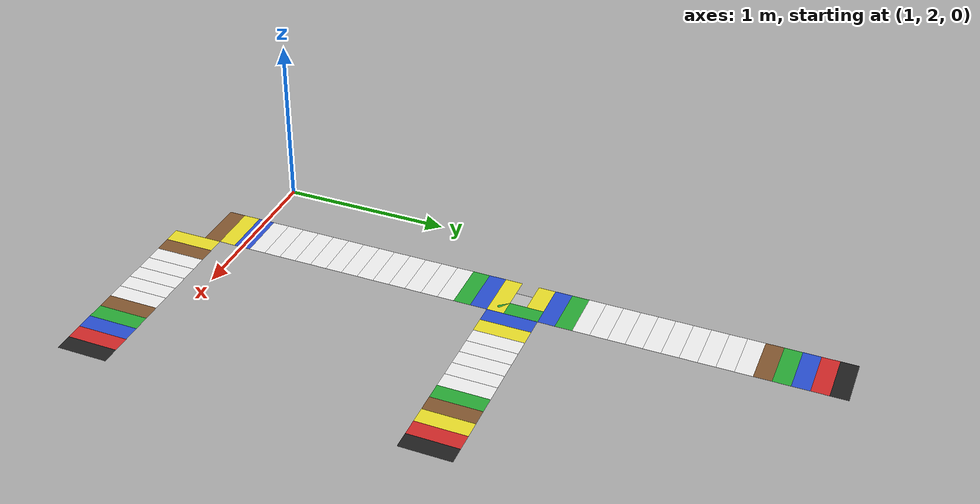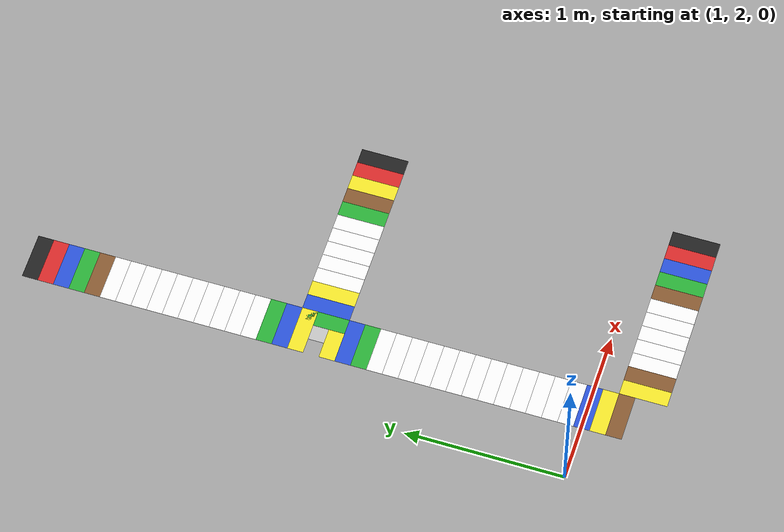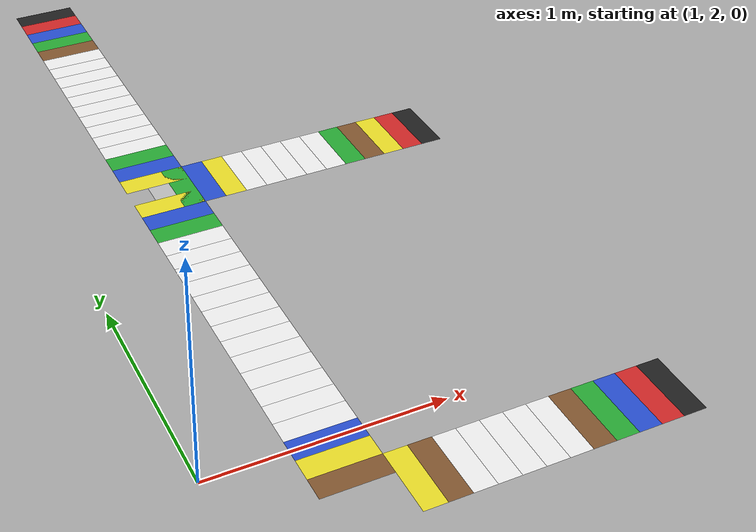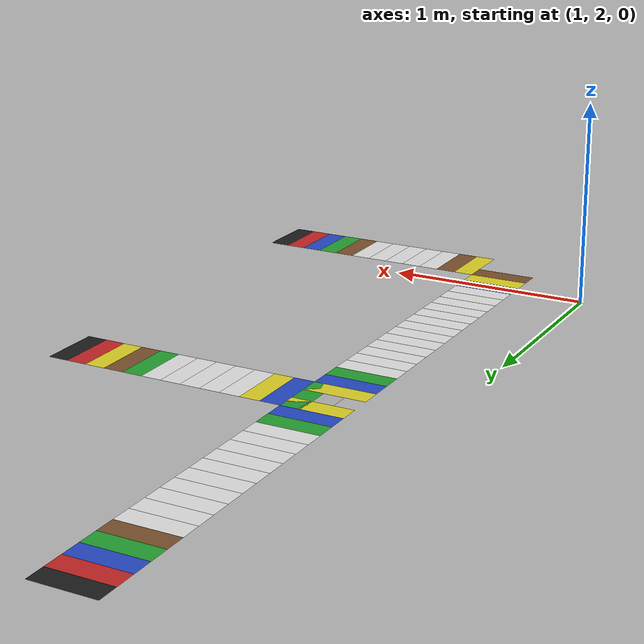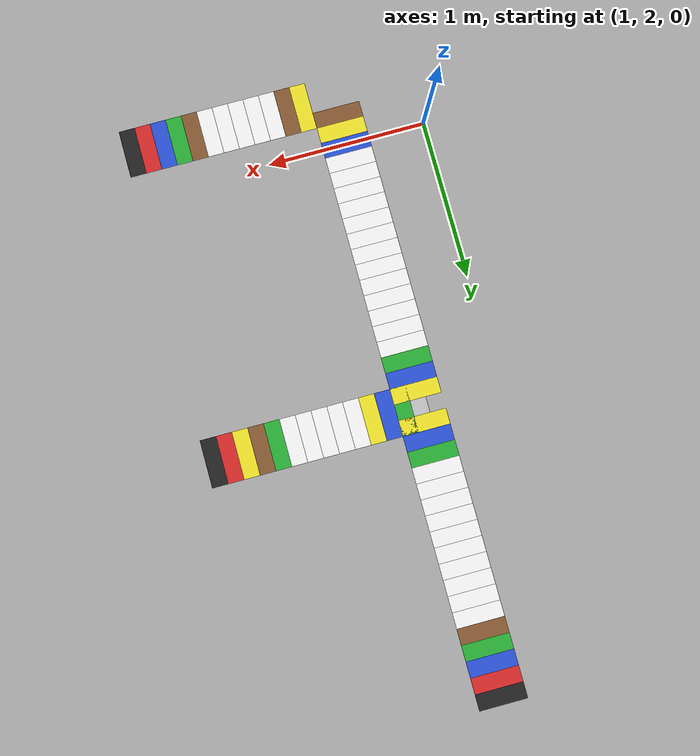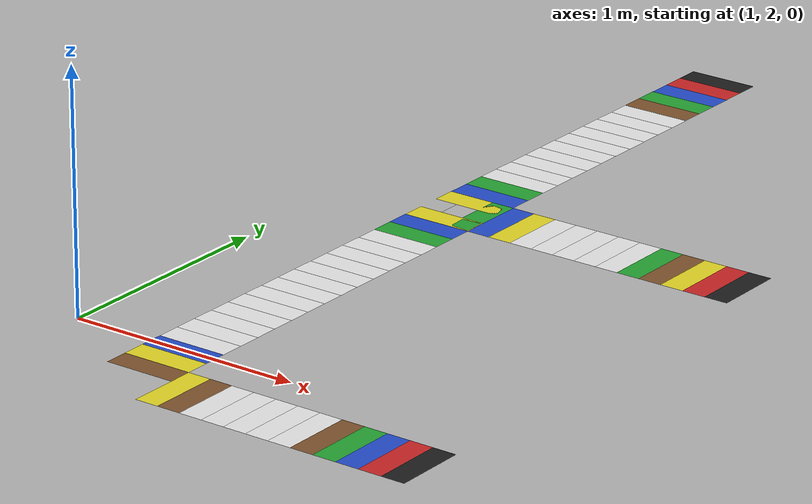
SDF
<sdf version="1.4">
 <world name="maskor_ev3_challenge">
  <model name="tileBD22">
   <pose>1.5 1.9 0.001 0 -0 0</pose>
   <static>1</static>
   <link name="link">
    <pose>0 0 0.001 0 -0 0</pose>
    <visual name="visual">
     <geometry><mesh><uri>model://maskor_ev3_tile/meshes/ev3_tile.dae</uri><scale>5 5 5</scale></mesh></geometry>
     <material>
      <script>
       <uri>model://maskor_ev3_tile/materials/scripts</uri>
       <uri>model://maskor_ev3_tile/materials/textures</uri>
       <name>yellow</name>
      </script>
     </material>
    </visual>
    <velocity_decay><linear>0</linear><angular>0</angular></velocity_decay>
   </link>
  </model>
  <model name="tileBD21">
   <pose>1.5 1.8 0.001 0 -0 0</pose>
   <static>1</static>
   <link name="link">
    <pose>0 0 0.001 0 -0 0</pose>
    <visual name="visual">
     <geometry><mesh><uri>model://maskor_ev3_tile/meshes/ev3_tile.dae</uri><scale>5 5 5</scale></mesh></geometry>
     <material>
      <script>
       <uri>model://maskor_ev3_tile/materials/scripts</uri>
       <uri>model://maskor_ev3_tile/materials/textures</uri>
       <name>brown</name>
      </script>
     </material>
    </visual>
    <velocity_decay><linear>0</linear><angular>0</angular></velocity_decay>
   </link>
  </model>
  <model name="tileBD28">
   <pose>1.5 2.5 0.001 0 -0 0</pose>
   <static>1</static>
   <link name="link">
    <pose>0 0 0.001 0 -0 0</pose>
    <visual name="visual">
     <geometry><mesh><uri>model://maskor_ev3_tile/meshes/ev3_tile.dae</uri><scale>5 5 5</scale></mesh></geometry>
     <material>
      <script>
       <uri>model://maskor_ev3_tile/materials/scripts</uri>
       <uri>model://maskor_ev3_tile/materials/textures</uri>
       <name>white</name>
      </script>
     </material>
    </visual>
    <velocity_decay><linear>0</linear><angular>0</angular></velocity_decay>
   </link>
  </model>
  <model name="tileBD23">
   <pose>1.5 2 0.001 0 -0 0</pose>
   <static>1</static>
   <link name="link">
    <pose>0 0 0.001 0 -0 0</pose>
    <visual name="visual">
     <geometry><mesh><uri>model://maskor_ev3_tile/meshes/ev3_tile.dae</uri><scale>5 5 5</scale></mesh></geometry>
     <material>
      <script>
       <uri>model://maskor_ev3_tile/materials/scripts</uri>
       <uri>model://maskor_ev3_tile/materials/textures</uri>
       <name>blue</name>
      </script>
     </material>
    </visual>
    <velocity_decay><linear>0</linear><angular>0</angular></velocity_decay>
   </link>
  </model>
  <model name="tileBD24">
   <pose>1.5 2.1 0.001 0 -0 0</pose>
   <static>1</static>
   <link name="link">
    <pose>0 0 0.001 0 -0 0</pose>
    <visual name="visual">
     <geometry><mesh><uri>model://maskor_ev3_tile/meshes/ev3_tile.dae</uri><scale>5 5 5</scale></mesh></geometry>
     <material>
      <script>
       <uri>model://maskor_ev3_tile/materials/scripts</uri>
       <uri>model://maskor_ev3_tile/materials/textures</uri>
       <name>white</name>
      </script>
     </material>
    </visual>
    <velocity_decay><linear>0</linear><angular>0</angular></velocity_decay>
   </link>
  </model>
  <model name="tileBD25">
   <pose>1.5 2.2 0.001 0 -0 0</pose>
   <static>1</static>
   <link name="link">
    <pose>0 0 0.001 0 -0 0</pose>
    <visual name="visual">
     <geometry><mesh><uri>model://maskor_ev3_tile/meshes/ev3_tile.dae</uri><scale>5 5 5</scale></mesh></geometry>
     <material>
      <script>
       <uri>model://maskor_ev3_tile/materials/scripts</uri>
       <uri>model://maskor_ev3_tile/materials/textures</uri>
       <name>white</name>
      </script>
     </material>
    </visual>
    <velocity_decay><linear>0</linear><angular>0</angular></velocity_decay>
   </link>
  </model>
  <model name="tileBD26">
   <pose>1.5 2.3 0.001 0 -0 0</pose>
   <static>1</static>
   <link name="link">
    <pose>0 0 0.001 0 -0 0</pose>
    <visual name="visual">
     <geometry><mesh><uri>model://maskor_ev3_tile/meshes/ev3_tile.dae</uri><scale>5 5 5</scale></mesh></geometry>
     <material>
      <script>
       <uri>model://maskor_ev3_tile/materials/scripts</uri>
       <uri>model://maskor_ev3_tile/materials/textures</uri>
       <name>white</name>
      </script>
     </material>
    </visual>
    <velocity_decay><linear>0</linear><angular>0</angular></velocity_decay>
   </link>
  </model>
  <model name="tileBD27">
   <pose>1.5 2.4 0.001 0 -0 0</pose>
   <static>1</static>
   <link name="link">
    <pose>0 0 0.001 0 -0 0</pose>
    <visual name="visual">
     <geometry><mesh><uri>model://maskor_ev3_tile/meshes/ev3_tile.dae</uri><scale>5 5 5</scale></mesh></geometry>
     <material>
      <script>
       <uri>model://maskor_ev3_tile/materials/scripts</uri>
       <uri>model://maskor_ev3_tile/materials/textures</uri>
       <name>white</name>
      </script>
     </material>
    </visual>
    <velocity_decay><linear>0</linear><angular>0</angular></velocity_decay>
   </link>
  </model>
  <model name="tileBD29">
   <pose>1.5 2.6 0.001 0 -0 0</pose>
   <static>1</static>
   <link name="link">
    <pose>0 0 0.001 0 -0 0</pose>
    <visual name="visual">
     <geometry><mesh><uri>model://maskor_ev3_tile/meshes/ev3_tile.dae</uri><scale>5 5 5</scale></mesh></geometry>
     <material>
      <script>
       <uri>model://maskor_ev3_tile/materials/scripts</uri>
       <uri>model://maskor_ev3_tile/materials/textures</uri>
       <name>white</name>
      </script>
     </material>
    </visual>
    <velocity_decay><linear>0</linear><angular>0</angular></velocity_decay>
   </link>
  </model>
  <model name="tileBD30">
   <pose>1.5 2.7 0.001 0 -0 0</pose>
   <static>1</static>
   <link name="link">
    <pose>0 0 0.001 0 -0 0</pose>
    <visual name="visual">
     <geometry><mesh><uri>model://maskor_ev3_tile/meshes/ev3_tile.dae</uri><scale>5 5 5</scale></mesh></geometry>
     <material>
      <script>
       <uri>model://maskor_ev3_tile/materials/scripts</uri>
       <uri>model://maskor_ev3_tile/materials/textures</uri>
       <name>white</name>
      </script>
     </material>
    </visual>
    <velocity_decay><linear>0</linear><angular>0</angular></velocity_decay>
   </link>
  </model>
  <model name="tileBD31">
   <pose>1.5 2.8 0.001 0 -0 0</pose>
   <static>1</static>
   <link name="link">
    <pose>0 0 0.001 0 -0 0</pose>
    <visual name="visual">
     <geometry><mesh><uri>model://maskor_ev3_tile/meshes/ev3_tile.dae</uri><scale>5 5 5</scale></mesh></geometry>
     <material>
      <script>
       <uri>model://maskor_ev3_tile/materials/scripts</uri>
       <uri>model://maskor_ev3_tile/materials/textures</uri>
       <name>white</name>
      </script>
     </material>
    </visual>
    <velocity_decay><linear>0</linear><angular>0</angular></velocity_decay>
   </link>
  </model>
  <model name="tileBD32">
   <pose>1.5 2.9 0.001 0 -0 0</pose>
   <static>1</static>
   <link name="link">
    <pose>0 0 0.001 0 -0 0</pose>
    <visual name="visual">
     <geometry><mesh><uri>model://maskor_ev3_tile/meshes/ev3_tile.dae</uri><scale>5 5 5</scale></mesh></geometry>
     <material>
      <script>
       <uri>model://maskor_ev3_tile/materials/scripts</uri>
       <uri>model://maskor_ev3_tile/materials/textures</uri>
       <name>white</name>
      </script>
     </material>
    </visual>
    <velocity_decay><linear>0</linear><angular>0</angular></velocity_decay>
   </link>
  </model>
  <model name="tileBD33">
   <pose>1.5 3 0.001 0 -0 0</pose>
   <static>1</static>
   <link name="link">
    <pose>0 0 0.001 0 -0 0</pose>
    <visual name="visual">
     <geometry><mesh><uri>model://maskor_ev3_tile/meshes/ev3_tile.dae</uri><scale>5 5 5</scale></mesh></geometry>
     <material>
      <script>
       <uri>model://maskor_ev3_tile/materials/scripts</uri>
       <uri>model://maskor_ev3_tile/materials/textures</uri>
       <name>white</name>
      </script>
     </material>
    </visual>
    <velocity_decay><linear>0</linear><angular>0</angular></velocity_decay>
   </link>
  </model>
  <model name="tileBD34">
   <pose>1.5 3.1 0.001 0 -0 0</pose>
   <static>1</static>
   <link name="link">
    <pose>0 0 0.001 0 -0 0</pose>
    <visual name="visual">
     <geometry><mesh><uri>model://maskor_ev3_tile/meshes/ev3_tile.dae</uri><scale>5 5 5</scale></mesh></geometry>
     <material>
      <script>
       <uri>model://maskor_ev3_tile/materials/scripts</uri>
       <uri>model://maskor_ev3_tile/materials/textures</uri>
       <name>white</name>
      </script>
     </material>
    </visual>
    <velocity_decay><linear>0</linear><angular>0</angular></velocity_decay>
   </link>
  </model>
  <model name="tileBD35">
   <pose>1.5 3.2 0.001 0 -0 0</pose>
   <static>1</static>
   <link name="link">
    <pose>0 0 0.001 0 -0 0</pose>
    <visual name="visual">
     <geometry><mesh><uri>model://maskor_ev3_tile/meshes/ev3_tile.dae</uri><scale>5 5 5</scale></mesh></geometry>
     <material>
      <script>
       <uri>model://maskor_ev3_tile/materials/scripts</uri>
       <uri>model://maskor_ev3_tile/materials/textures</uri>
       <name>white</name>
      </script>
     </material>
    </visual>
    <velocity_decay><linear>0</linear><angular>0</angular></velocity_decay>
   </link>
  </model>
  <model name="tileBD36">
   <pose>1.5 3.3 0.001 0 -0 0</pose>
   <static>1</static>
   <link name="link">
    <pose>0 0 0.001 0 -0 0</pose>
    <visual name="visual">
     <geometry><mesh><uri>model://maskor_ev3_tile/meshes/ev3_tile.dae</uri><scale>5 5 5</scale></mesh></geometry>
     <material>
      <script>
       <uri>model://maskor_ev3_tile/materials/scripts</uri>
       <uri>model://maskor_ev3_tile/materials/textures</uri>
       <name>white</name>
      </script>
     </material>
    </visual>
    <velocity_decay><linear>0</linear><angular>0</angular></velocity_decay>
   </link>
  </model>
  <model name="tileBD37">
   <pose>1.5 3.4 0.001 0 -0 0</pose>
   <static>1</static>
   <link name="link">
    <pose>0 0 0.001 0 -0 0</pose>
    <visual name="visual">
     <geometry><mesh><uri>model://maskor_ev3_tile/meshes/ev3_tile.dae</uri><scale>5 5 5</scale></mesh></geometry>
     <material>
      <script>
       <uri>model://maskor_ev3_tile/materials/scripts</uri>
       <uri>model://maskor_ev3_tile/materials/textures</uri>
       <name>green</name>
      </script>
     </material>
    </visual>
    <velocity_decay><linear>0</linear><angular>0</angular></velocity_decay>
   </link>
  </model>
  <model name="tileBD38">
   <pose>1.5 3.5 0.001 0 -0 0</pose>
   <static>1</static>
   <link name="link">
    <pose>0 0 0.001 0 -0 0</pose>
    <visual name="visual">
     <geometry><mesh><uri>model://maskor_ev3_tile/meshes/ev3_tile.dae</uri><scale>5 5 5</scale></mesh></geometry>
     <material>
      <script>
       <uri>model://maskor_ev3_tile/materials/scripts</uri>
       <uri>model://maskor_ev3_tile/materials/textures</uri>
       <name>blue</name>
      </script>
     </material>
    </visual>
    <velocity_decay><linear>0</linear><angular>0</angular></velocity_decay>
   </link>
  </model>
  <model name="tileBD39">
   <pose>1.5 3.6 0.001 0 -0 0</pose>
   <static>1</static>
   <link name="link">
    <pose>0 0 0.001 0 -0 0</pose>
    <visual name="visual">
     <geometry><mesh><uri>model://maskor_ev3_tile/meshes/ev3_tile.dae</uri><scale>5 5 5</scale></mesh></geometry>
     <material>
      <script>
       <uri>model://maskor_ev3_tile/materials/scripts</uri>
       <uri>model://maskor_ev3_tile/materials/textures</uri>
       <name>yellow</name>
      </script>
     </material>
    </visual>
    <velocity_decay><linear>0</linear><angular>0</angular></velocity_decay>
   </link>
  </model>
  <model name="tileBD40">
   <pose>1.5 3.7 0.002 0 -0 0</pose>
   <static>1</static>
   <link name="link">
    <visual name="visual">
     <geometry>
      <mesh><uri>model://maskor_ev3_tile_center/meshes/ev3_tile_center.dae</uri><scale>5 5 5</scale></mesh>
     </geometry>
     <material>
      <script>
       <uri>model://maskor_ev3_tile_center/materials/scripts</uri>
       <uri>model://maskor_ev3_tile_center/materials/textures</uri>
       <name>center</name>
      </script>
     </material>
    </visual>
    <velocity_decay><linear>0</linear><angular>0</angular></velocity_decay>
   </link>
  </model>
  <model name="tileBD41">
   <pose>1.5 3.8 0.001 0 -0 0</pose>
   <static>1</static>
   <link name="link">
    <pose>0 0 0.001 0 -0 0</pose>
    <visual name="visual">
     <geometry><mesh><uri>model://maskor_ev3_tile/meshes/ev3_tile.dae</uri><scale>5 5 5</scale></mesh></geometry>
     <material>
      <script>
       <uri>model://maskor_ev3_tile/materials/scripts</uri>
       <uri>model://maskor_ev3_tile/materials/textures</uri>
       <name>yellow</name>
      </script>
     </material>
    </visual>
    <velocity_decay><linear>0</linear><angular>0</angular></velocity_decay>
   </link>
  </model>
  <model name="tileBD42">
   <pose>1.5 3.9 0.001 0 -0 0</pose>
   <static>1</static>
   <link name="link">
    <pose>0 0 0.001 0 -0 0</pose>
    <visual name="visual">
     <geometry><mesh><uri>model://maskor_ev3_tile/meshes/ev3_tile.dae</uri><scale>5 5 5</scale></mesh></geometry>
     <material>
      <script>
       <uri>model://maskor_ev3_tile/materials/scripts</uri>
       <uri>model://maskor_ev3_tile/materials/textures</uri>
       <name>blue</name>
      </script>
     </material>
    </visual>
    <velocity_decay><linear>0</linear><angular>0</angular></velocity_decay>
   </link>
  </model>
  <model name="tileBD43">
   <pose>1.5 4 0.001 0 -0 0</pose>
   <static>1</static>
   <link name="link">
    <pose>0 0 0.001 0 -0 0</pose>
    <visual name="visual">
     <geometry><mesh><uri>model://maskor_ev3_tile/meshes/ev3_tile.dae</uri><scale>5 5 5</scale></mesh></geometry>
     <material>
      <script>
       <uri>model://maskor_ev3_tile/materials/scripts</uri>
       <uri>model://maskor_ev3_tile/materials/textures</uri>
       <name>green</name>
      </script>
     </material>
    </visual>
    <velocity_decay><linear>0</linear><angular>0</angular></velocity_decay>
   </link>
  </model>
  <model name="tileBD44">
   <pose>1.5 4.1 0.001 0 -0 0</pose>
   <static>1</static>
   <link name="link">
    <pose>0 0 0.001 0 -0 0</pose>
    <visual name="visual">
     <geometry><mesh><uri>model://maskor_ev3_tile/meshes/ev3_tile.dae</uri><scale>5 5 5</scale></mesh></geometry>
     <material>
      <script>
       <uri>model://maskor_ev3_tile/materials/scripts</uri>
       <uri>model://maskor_ev3_tile/materials/textures</uri>
       <name>white</name>
      </script>
     </material>
    </visual>
    <velocity_decay><linear>0</linear><angular>0</angular></velocity_decay>
   </link>
  </model>
  <model name="tileBD45">
   <pose>1.5 4.2 0.001 0 -0 0</pose>
   <static>1</static>
   <link name="link">
    <pose>0 0 0.001 0 -0 0</pose>
    <visual name="visual">
     <geometry><mesh><uri>model://maskor_ev3_tile/meshes/ev3_tile.dae</uri><scale>5 5 5</scale></mesh></geometry>
     <material>
      <script>
       <uri>model://maskor_ev3_tile/materials/scripts</uri>
       <uri>model://maskor_ev3_tile/materials/textures</uri>
       <name>white</name>
      </script>
     </material>
    </visual>
    <velocity_decay><linear>0</linear><angular>0</angular></velocity_decay>
   </link>
  </model>
  <model name="tileBD46">
   <pose>1.5 4.3 0.001 0 -0 0</pose>
   <static>1</static>
   <link name="link">
    <pose>0 0 0.001 0 -0 0</pose>
    <visual name="visual">
     <geometry><mesh><uri>model://maskor_ev3_tile/meshes/ev3_tile.dae</uri><scale>5 5 5</scale></mesh></geometry>
     <material>
      <script>
       <uri>model://maskor_ev3_tile/materials/scripts</uri>
       <uri>model://maskor_ev3_tile/materials/textures</uri>
       <name>white</name>
      </script>
     </material>
    </visual>
    <velocity_decay><linear>0</linear><angular>0</angular></velocity_decay>
   </link>
  </model>
  <model name="tileBD47">
   <pose>1.5 4.4 0.001 0 -0 0</pose>
   <static>1</static>
   <link name="link">
    <pose>0 0 0.001 0 -0 0</pose>
    <visual name="visual">
     <geometry><mesh><uri>model://maskor_ev3_tile/meshes/ev3_tile.dae</uri><scale>5 5 5</scale></mesh></geometry>
     <material>
      <script>
       <uri>model://maskor_ev3_tile/materials/scripts</uri>
       <uri>model://maskor_ev3_tile/materials/textures</uri>
       <name>white</name>
      </script>
     </material>
    </visual>
    <velocity_decay><linear>0</linear><angular>0</angular></velocity_decay>
   </link>
  </model>
  <model name="tileBD48">
   <pose>1.5 4.5 0.001 0 -0 0</pose>
   <static>1</static>
   <link name="link">
    <pose>0 0 0.001 0 -0 0</pose>
    <visual name="visual">
     <geometry><mesh><uri>model://maskor_ev3_tile/meshes/ev3_tile.dae</uri><scale>5 5 5</scale></mesh></geometry>
     <material>
      <script>
       <uri>model://maskor_ev3_tile/materials/scripts</uri>
       <uri>model://maskor_ev3_tile/materials/textures</uri>
       <name>white</name>
      </script>
     </material>
    </visual>
    <velocity_decay><linear>0</linear><angular>0</angular></velocity_decay>
   </link>
  </model>
  <model name="tileBD49">
   <pose>1.5 4.6 0.001 0 -0 0</pose>
   <static>1</static>
   <link name="link">
    <pose>0 0 0.001 0 -0 0</pose>
    <visual name="visual">
     <geometry><mesh><uri>model://maskor_ev3_tile/meshes/ev3_tile.dae</uri><scale>5 5 5</scale></mesh></geometry>
     <material>
      <script>
       <uri>model://maskor_ev3_tile/materials/scripts</uri>
       <uri>model://maskor_ev3_tile/materials/textures</uri>
       <name>white</name>
      </script>
     </material>
    </visual>
    <velocity_decay><linear>0</linear><angular>0</angular></velocity_decay>
   </link>
  </model>
  <model name="tileBD50">
   <pose>1.5 4.7 0.001 0 -0 0</pose>
   <static>1</static>
   <link name="link">
    <pose>0 0 0.001 0 -0 0</pose>
    <visual name="visual">
     <geometry><mesh><uri>model://maskor_ev3_tile/meshes/ev3_tile.dae</uri><scale>5 5 5</scale></mesh></geometry>
     <material>
      <script>
       <uri>model://maskor_ev3_tile/materials/scripts</uri>
       <uri>model://maskor_ev3_tile/materials/textures</uri>
       <name>white</name>
      </script>
     </material>
    </visual>
    <velocity_decay><linear>0</linear><angular>0</angular></velocity_decay>
   </link>
  </model>
  <model name="tileBD51">
   <pose>1.5 4.8 0.001 0 -0 0</pose>
   <static>1</static>
   <link name="link">
    <pose>0 0 0.001 0 -0 0</pose>
    <visual name="visual">
     <geometry><mesh><uri>model://maskor_ev3_tile/meshes/ev3_tile.dae</uri><scale>5 5 5</scale></mesh></geometry>
     <material>
      <script>
       <uri>model://maskor_ev3_tile/materials/scripts</uri>
       <uri>model://maskor_ev3_tile/materials/textures</uri>
       <name>white</name>
      </script>
     </material>
    </visual>
    <velocity_decay><linear>0</linear><angular>0</angular></velocity_decay>
   </link>
  </model>
  <model name="tileBD52">
   <pose>1.5 4.9 0.001 0 -0 0</pose>
   <static>1</static>
   <link name="link">
    <pose>0 0 0.001 0 -0 0</pose>
    <visual name="visual">
     <geometry><mesh><uri>model://maskor_ev3_tile/meshes/ev3_tile.dae</uri><scale>5 5 5</scale></mesh></geometry>
     <material>
      <script>
       <uri>model://maskor_ev3_tile/materials/scripts</uri>
       <uri>model://maskor_ev3_tile/materials/textures</uri>
       <name>white</name>
      </script>
     </material>
    </visual>
    <velocity_decay><linear>0</linear><angular>0</angular></velocity_decay>
   </link>
  </model>
  <model name="tileBD53">
   <pose>1.5 5 0.001 0 -0 0</pose>
   <static>1</static>
   <link name="link">
    <pose>0 0 0.001 0 -0 0</pose>
    <visual name="visual">
     <geometry><mesh><uri>model://maskor_ev3_tile/meshes/ev3_tile.dae</uri><scale>5 5 5</scale></mesh></geometry>
     <material>
      <script>
       <uri>model://maskor_ev3_tile/materials/scripts</uri>
       <uri>model://maskor_ev3_tile/materials/textures</uri>
       <name>white</name>
      </script>
     </material>
    </visual>
    <velocity_decay><linear>0</linear><angular>0</angular></velocity_decay>
   </link>
  </model>
  <model name="tileBD54">
   <pose>1.5 5.1 0.001 0 -0 0</pose>
   <static>1</static>
   <link name="link">
    <pose>0 0 0.001 0 -0 0</pose>
    <visual name="visual">
     <geometry><mesh><uri>model://maskor_ev3_tile/meshes/ev3_tile.dae</uri><scale>5 5 5</scale></mesh></geometry>
     <material>
      <script>
       <uri>model://maskor_ev3_tile/materials/scripts</uri>
       <uri>model://maskor_ev3_tile/materials/textures</uri>
       <name>brown</name>
      </script>
     </material>
    </visual>
    <velocity_decay><linear>0</linear><angular>0</angular></velocity_decay>
   </link>
  </model>
  <model name="tileBD55">
   <pose>1.5 5.2 0.001 0 -0 0</pose>
   <static>1</static>
   <link name="link">
    <pose>0 0 0.001 0 -0 0</pose>
    <visual name="visual">
     <geometry><mesh><uri>model://maskor_ev3_tile/meshes/ev3_tile.dae</uri><scale>5 5 5</scale></mesh></geometry>
     <material>
      <script>
       <uri>model://maskor_ev3_tile/materials/scripts</uri>
       <uri>model://maskor_ev3_tile/materials/textures</uri>
       <name>green</name>
      </script>
     </material>
    </visual>
    <velocity_decay><linear>0</linear><angular>0</angular></velocity_decay>
   </link>
  </model>
  <model name="tileBD56">
   <pose>1.5 5.3 0.001 0 -0 0</pose>
   <static>1</static>
   <link name="link">
    <pose>0 0 0.001 0 -0 0</pose>
    <visual name="visual">
     <geometry><mesh><uri>model://maskor_ev3_tile/meshes/ev3_tile.dae</uri><scale>5 5 5</scale></mesh></geometry>
     <material>
      <script>
       <uri>model://maskor_ev3_tile/materials/scripts</uri>
       <uri>model://maskor_ev3_tile/materials/textures</uri>
       <name>blue</name>
      </script>
     </material>
    </visual>
    <velocity_decay><linear>0</linear><angular>0</angular></velocity_decay>
   </link>
  </model>
  <model name="tileBD57">
   <pose>1.5 5.4 0.001 0 -0 0</pose>
   <static>1</static>
   <link name="link">
    <pose>0 0 0.001 0 -0 0</pose>
    <visual name="visual">
     <geometry><mesh><uri>model://maskor_ev3_tile/meshes/ev3_tile.dae</uri><scale>5 5 5</scale></mesh></geometry>
     <material>
      <script>
       <uri>model://maskor_ev3_tile/materials/scripts</uri>
       <uri>model://maskor_ev3_tile/materials/textures</uri>
       <name>red</name>
      </script>
     </material>
    </visual>
    <velocity_decay><linear>0</linear><angular>0</angular></velocity_decay>
   </link>
  </model>
  <model name="tileBD58">
   <pose>1.5 5.5 0.001 0 -0 0</pose>
   <static>1</static>
   <link name="link">
    <pose>0 0 0.001 0 -0 0</pose>
    <visual name="visual">
     <geometry><mesh><uri>model://maskor_ev3_tile/meshes/ev3_tile.dae</uri><scale>5 5 5</scale></mesh></geometry>
     <material>
      <script>
       <uri>model://maskor_ev3_tile/materials/scripts</uri>
       <uri>model://maskor_ev3_tile/materials/textures</uri>
       <name>black</name>
      </script>
     </material>
    </visual>
    <velocity_decay><linear>0</linear><angular>0</angular></velocity_decay>
   </link>
  </model>
  <model name="tileEF32">
   <pose>1.7 1.7 0.001 0 -0 1.5708</pose>
   <static>1</static>
   <link name="link">
    <pose>0 0 0.001 0 -0 0</pose>
    <visual name="visual">
     <geometry><mesh><uri>model://maskor_ev3_tile/meshes/ev3_tile.dae</uri><scale>5 5 5</scale></mesh></geometry>
     <material>
      <script>
       <uri>model://maskor_ev3_tile/materials/scripts</uri>
       <uri>model://maskor_ev3_tile/materials/textures</uri>
       <name>yellow</name>
      </script>
     </material>
    </visual>
    <velocity_decay><linear>0</linear><angular>0</angular></velocity_decay>
   </link>
  </model>
  <model name="tileEF33">
   <pose>1.8 1.7 0.001 0 -0 1.5708</pose>
   <static>1</static>
   <link name="link">
    <pose>0 0 0.001 0 -0 0</pose>
    <visual name="visual">
     <geometry><mesh><uri>model://maskor_ev3_tile/meshes/ev3_tile.dae</uri><scale>5 5 5</scale></mesh></geometry>
     <material>
      <script>
       <uri>model://maskor_ev3_tile/materials/scripts</uri>
       <uri>model://maskor_ev3_tile/materials/textures</uri>
       <name>brown</name>
      </script>
     </material>
    </visual>
    <velocity_decay><linear>0</linear><angular>0</angular></velocity_decay>
   </link>
  </model>
  <model name="tileEF35">
   <pose>2 1.7 0.001 0 -0 1.5708</pose>
   <static>1</static>
   <link name="link">
    <pose>0 0 0.001 0 -0 0</pose>
    <visual name="visual">
     <geometry><mesh><uri>model://maskor_ev3_tile/meshes/ev3_tile.dae</uri><scale>5 5 5</scale></mesh></geometry>
     <material>
      <script>
       <uri>model://maskor_ev3_tile/materials/scripts</uri>
       <uri>model://maskor_ev3_tile/materials/textures</uri>
       <name>white</name>
      </script>
     </material>
    </visual>
    <velocity_decay><linear>0</linear><angular>0</angular></velocity_decay>
   </link>
  </model>
  <model name="tileEF34">
   <pose>1.9 1.7 0.001 0 -0 1.5708</pose>
   <static>1</static>
   <link name="link">
    <pose>0 0 0.001 0 -0 0</pose>
    <visual name="visual">
     <geometry><mesh><uri>model://maskor_ev3_tile/meshes/ev3_tile.dae</uri><scale>5 5 5</scale></mesh></geometry>
     <material>
      <script>
       <uri>model://maskor_ev3_tile/materials/scripts</uri>
       <uri>model://maskor_ev3_tile/materials/textures</uri>
       <name>white</name>
      </script>
     </material>
    </visual>
    <velocity_decay><linear>0</linear><angular>0</angular></velocity_decay>
   </link>
  </model>
  <model name="tileEF36">
   <pose>2.1 1.7 0.001 0 -0 1.5708</pose>
   <static>1</static>
   <link name="link">
    <pose>0 0 0.001 0 -0 0</pose>
    <visual name="visual">
     <geometry><mesh><uri>model://maskor_ev3_tile/meshes/ev3_tile.dae</uri><scale>5 5 5</scale></mesh></geometry>
     <material>
      <script>
       <uri>model://maskor_ev3_tile/materials/scripts</uri>
       <uri>model://maskor_ev3_tile/materials/textures</uri>
       <name>white</name>
      </script>
     </material>
    </visual>
    <velocity_decay><linear>0</linear><angular>0</angular></velocity_decay>
   </link>
  </model>
  <model name="tileEF37">
   <pose>2.2 1.7 0.001 0 -0 1.5708</pose>
   <static>1</static>
   <link name="link">
    <pose>0 0 0.001 0 -0 0</pose>
    <visual name="visual">
     <geometry><mesh><uri>model://maskor_ev3_tile/meshes/ev3_tile.dae</uri><scale>5 5 5</scale></mesh></geometry>
     <material>
      <script>
       <uri>model://maskor_ev3_tile/materials/scripts</uri>
       <uri>model://maskor_ev3_tile/materials/textures</uri>
       <name>white</name>
      </script>
     </material>
    </visual>
    <velocity_decay><linear>0</linear><angular>0</angular></velocity_decay>
   </link>
  </model>
  <model name="tileEF38">
   <pose>2.3 1.7 0.001 0 -0 1.5708</pose>
   <static>1</static>
   <link name="link">
    <pose>0 0 0.001 0 -0 0</pose>
    <visual name="visual">
     <geometry><mesh><uri>model://maskor_ev3_tile/meshes/ev3_tile.dae</uri><scale>5 5 5</scale></mesh></geometry>
     <material>
      <script>
       <uri>model://maskor_ev3_tile/materials/scripts</uri>
       <uri>model://maskor_ev3_tile/materials/textures</uri>
       <name>white</name>
      </script>
     </material>
    </visual>
    <velocity_decay><linear>0</linear><angular>0</angular></velocity_decay>
   </link>
  </model>
  <model name="tileEF39">
   <pose>2.4 1.7 0.001 0 -0 1.5708</pose>
   <static>1</static>
   <link name="link">
    <pose>0 0 0.001 0 -0 0</pose>
    <visual name="visual">
     <geometry><mesh><uri>model://maskor_ev3_tile/meshes/ev3_tile.dae</uri><scale>5 5 5</scale></mesh></geometry>
     <material>
      <script>
       <uri>model://maskor_ev3_tile/materials/scripts</uri>
       <uri>model://maskor_ev3_tile/materials/textures</uri>
       <name>brown</name>
      </script>
     </material>
    </visual>
    <velocity_decay><linear>0</linear><angular>0</angular></velocity_decay>
   </link>
  </model>
  <model name="tileEF40">
   <pose>2.5 1.7 0.001 0 -0 1.5708</pose>
   <static>1</static>
   <link name="link">
    <pose>0 0 0.001 0 -0 0</pose>
    <visual name="visual">
     <geometry><mesh><uri>model://maskor_ev3_tile/meshes/ev3_tile.dae</uri><scale>5 5 5</scale></mesh></geometry>
     <material>
      <script>
       <uri>model://maskor_ev3_tile/materials/scripts</uri>
       <uri>model://maskor_ev3_tile/materials/textures</uri>
       <name>green</name>
      </script>
     </material>
    </visual>
    <velocity_decay><linear>0</linear><angular>0</angular></velocity_decay>
   </link>
  </model>
  <model name="tileEF41">
   <pose>2.6 1.7 0.001 0 -0 1.5708</pose>
   <static>1</static>
   <link name="link">
    <pose>0 0 0.001 0 -0 0</pose>
    <visual name="visual">
     <geometry><mesh><uri>model://maskor_ev3_tile/meshes/ev3_tile.dae</uri><scale>5 5 5</scale></mesh></geometry>
     <material>
      <script>
       <uri>model://maskor_ev3_tile/materials/scripts</uri>
       <uri>model://maskor_ev3_tile/materials/textures</uri>
       <name>blue</name>
      </script>
     </material>
    </visual>
    <velocity_decay><linear>0</linear><angular>0</angular></velocity_decay>
   </link>
  </model>
  <model name="tileEF42">
   <pose>2.7 1.7 0.001 0 -0 1.5708</pose>
   <static>1</static>
   <link name="link">
    <pose>0 0 0.001 0 -0 0</pose>
    <visual name="visual">
     <geometry><mesh><uri>model://maskor_ev3_tile/meshes/ev3_tile.dae</uri><scale>5 5 5</scale></mesh></geometry>
     <material>
      <script>
       <uri>model://maskor_ev3_tile/materials/scripts</uri>
       <uri>model://maskor_ev3_tile/materials/textures</uri>
       <name>red</name>
      </script>
     </material>
    </visual>
    <velocity_decay><linear>0</linear><angular>0</angular></velocity_decay>
   </link>
  </model>
  <model name="tileEF43">
   <pose>2.8 1.7 0.001 0 -0 1.5708</pose>
   <static>1</static>
   <link name="link">
    <pose>0 0 0.001 0 -0 0</pose>
    <visual name="visual">
     <geometry><mesh><uri>model://maskor_ev3_tile/meshes/ev3_tile.dae</uri><scale>5 5 5</scale></mesh></geometry>
     <material>
      <script>
       <uri>model://maskor_ev3_tile/materials/scripts</uri>
       <uri>model://maskor_ev3_tile/materials/textures</uri>
       <name>black</name>
      </script>
     </material>
    </visual>
    <velocity_decay><linear>0</linear><angular>0</angular></velocity_decay>
   </link>
  </model>
  <model name="tileGH31">
   <pose>1.6 3.7 0.001 0 -0 1.5708</pose>
   <static>1</static>
   <link name="link">
    <pose>0 0 0.001 0 -0 0</pose>
    <visual name="visual">
     <geometry><mesh><uri>model://maskor_ev3_tile/meshes/ev3_tile.dae</uri><scale>5 5 5</scale></mesh></geometry>
     <material>
      <script>
       <uri>model://maskor_ev3_tile/materials/scripts</uri>
       <uri>model://maskor_ev3_tile/materials/textures</uri>
       <name>green</name>
      </script>
     </material>
    </visual>
    <velocity_decay><linear>0</linear><angular>0</angular></velocity_decay>
   </link>
  </model>
  <model name="tileGH32">
   <pose>1.7 3.7 0.001 0 -0 1.5708</pose>
   <static>1</static>
   <link name="link">
    <pose>0 0 0.001 0 -0 0</pose>
    <visual name="visual">
     <geometry><mesh><uri>model://maskor_ev3_tile/meshes/ev3_tile.dae</uri><scale>5 5 5</scale></mesh></geometry>
     <material>
      <script>
       <uri>model://maskor_ev3_tile/materials/scripts</uri>
       <uri>model://maskor_ev3_tile/materials/textures</uri>
       <name>blue</name>
      </script>
     </material>
    </visual>
    <velocity_decay><linear>0</linear><angular>0</angular></velocity_decay>
   </link>
  </model>
  <model name="tileGH33">
   <pose>1.8 3.7 0.001 0 -0 1.5708</pose>
   <static>1</static>
   <link name="link">
    <pose>0 0 0.001 0 -0 0</pose>
    <visual name="visual">
     <geometry><mesh><uri>model://maskor_ev3_tile/meshes/ev3_tile.dae</uri><scale>5 5 5</scale></mesh></geometry>
     <material>
      <script>
       <uri>model://maskor_ev3_tile/materials/scripts</uri>
       <uri>model://maskor_ev3_tile/materials/textures</uri>
       <name>yellow</name>
      </script>
     </material>
    </visual>
    <velocity_decay><linear>0</linear><angular>0</angular></velocity_decay>
   </link>
  </model>
  <model name="tileGH34">
   <pose>1.9 3.7 0.001 0 -0 1.5708</pose>
   <static>1</static>
   <link name="link">
    <pose>0 0 0.001 0 -0 0</pose>
    <visual name="visual">
     <geometry><mesh><uri>model://maskor_ev3_tile/meshes/ev3_tile.dae</uri><scale>5 5 5</scale></mesh></geometry>
     <material>
      <script>
       <uri>model://maskor_ev3_tile/materials/scripts</uri>
       <uri>model://maskor_ev3_tile/materials/textures</uri>
       <name>white</name>
      </script>
     </material>
    </visual>
    <velocity_decay><linear>0</linear><angular>0</angular></velocity_decay>
   </link>
  </model>
  <model name="tileGH35">
   <pose>2 3.7 0.001 0 -0 1.5708</pose>
   <static>1</static>
   <link name="link">
    <pose>0 0 0.001 0 -0 0</pose>
    <visual name="visual">
     <geometry><mesh><uri>model://maskor_ev3_tile/meshes/ev3_tile.dae</uri><scale>5 5 5</scale></mesh></geometry>
     <material>
      <script>
       <uri>model://maskor_ev3_tile/materials/scripts</uri>
       <uri>model://maskor_ev3_tile/materials/textures</uri>
       <name>white</name>
      </script>
     </material>
    </visual>
    <velocity_decay><linear>0</linear><angular>0</angular></velocity_decay>
   </link>
  </model>
  <model name="tileGH36">
   <pose>2.1 3.7 0.001 0 -0 1.5708</pose>
   <static>1</static>
   <link name="link">
    <pose>0 0 0.001 0 -0 0</pose>
    <visual name="visual">
     <geometry><mesh><uri>model://maskor_ev3_tile/meshes/ev3_tile.dae</uri><scale>5 5 5</scale></mesh></geometry>
     <material>
      <script>
       <uri>model://maskor_ev3_tile/materials/scripts</uri>
       <uri>model://maskor_ev3_tile/materials/textures</uri>
       <name>white</name>
      </script>
     </material>
    </visual>
    <velocity_decay><linear>0</linear><angular>0</angular></velocity_decay>
   </link>
  </model>
  <model name="tileGH37">
   <pose>2.2 3.7 0.001 0 -0 1.5708</pose>
   <static>1</static>
   <link name="link">
    <pose>0 0 0.001 0 -0 0</pose>
    <visual name="visual">
     <geometry><mesh><uri>model://maskor_ev3_tile/meshes/ev3_tile.dae</uri><scale>5 5 5</scale></mesh></geometry>
     <material>
      <script>
       <uri>model://maskor_ev3_tile/materials/scripts</uri>
       <uri>model://maskor_ev3_tile/materials/textures</uri>
       <name>white</name>
      </script>
     </material>
    </visual>
    <velocity_decay><linear>0</linear><angular>0</angular></velocity_decay>
   </link>
  </model>
  <model name="tileGH38">
   <pose>2.3 3.7 0.001 0 -0 1.5708</pose>
   <static>1</static>
   <link name="link">
    <pose>0 0 0.001 0 -0 0</pose>
    <visual name="visual">
     <geometry><mesh><uri>model://maskor_ev3_tile/meshes/ev3_tile.dae</uri><scale>5 5 5</scale></mesh></geometry>
     <material>
      <script>
       <uri>model://maskor_ev3_tile/materials/scripts</uri>
       <uri>model://maskor_ev3_tile/materials/textures</uri>
       <name>white</name>
      </script>
     </material>
    </visual>
    <velocity_decay><linear>0</linear><angular>0</angular></velocity_decay>
   </link>
  </model>
  <model name="tileGH39">
   <pose>2.4 3.7 0.001 0 -0 1.5708</pose>
   <static>1</static>
   <link name="link">
    <pose>0 0 0.001 0 -0 0</pose>
    <visual name="visual">
     <geometry><mesh><uri>model://maskor_ev3_tile/meshes/ev3_tile.dae</uri><scale>5 5 5</scale></mesh></geometry>
     <material>
      <script>
       <uri>model://maskor_ev3_tile/materials/scripts</uri>
       <uri>model://maskor_ev3_tile/materials/textures</uri>
       <name>green</name>
      </script>
     </material>
    </visual>
    <velocity_decay><linear>0</linear><angular>0</angular></velocity_decay>
   </link>
  </model>
  <model name="tileGH40">
   <pose>2.5 3.7 0.001 0 -0 1.5708</pose>
   <static>1</static>
   <link name="link">
    <pose>0 0 0.001 0 -0 0</pose>
    <visual name="visual">
     <geometry><mesh><uri>model://maskor_ev3_tile/meshes/ev3_tile.dae</uri><scale>5 5 5</scale></mesh></geometry>
     <material>
      <script>
       <uri>model://maskor_ev3_tile/materials/scripts</uri>
       <uri>model://maskor_ev3_tile/materials/textures</uri>
       <name>brown</name>
      </script>
     </material>
    </visual>
    <velocity_decay><linear>0</linear><angular>0</angular></velocity_decay>
   </link>
  </model>
  <model name="tileGH41">
   <pose>2.6 3.7 0.001 0 -0 1.5708</pose>
   <static>1</static>
   <link name="link">
    <pose>0 0 0.001 0 -0 0</pose>
    <visual name="visual">
     <geometry><mesh><uri>model://maskor_ev3_tile/meshes/ev3_tile.dae</uri><scale>5 5 5</scale></mesh></geometry>
     <material>
      <script>
       <uri>model://maskor_ev3_tile/materials/scripts</uri>
       <uri>model://maskor_ev3_tile/materials/textures</uri>
       <name>yellow</name>
      </script>
     </material>
    </visual>
    <velocity_decay><linear>0</linear><angular>0</angular></velocity_decay>
   </link>
  </model>
  <model name="tileGH42">
   <pose>2.7 3.7 0.001 0 -0 1.5708</pose>
   <static>1</static>
   <link name="link">
    <pose>0 0 0.001 0 -0 0</pose>
    <visual name="visual">
     <geometry><mesh><uri>model://maskor_ev3_tile/meshes/ev3_tile.dae</uri><scale>5 5 5</scale></mesh></geometry>
     <material>
      <script>
       <uri>model://maskor_ev3_tile/materials/scripts</uri>
       <uri>model://maskor_ev3_tile/materials/textures</uri>
       <name>red</name>
      </script>
     </material>
    </visual>
    <velocity_decay><linear>0</linear><angular>0</angular></velocity_decay>
   </link>
  </model>
  <model name="tileGH43">
   <pose>2.8 3.7 0.001 0 -0 1.5708</pose>
   <static>1</static>
   <link name="link">
    <pose>0 0 0.001 0 -0 0</pose>
    <visual name="visual">
     <geometry><mesh><uri>model://maskor_ev3_tile/meshes/ev3_tile.dae</uri><scale>5 5 5</scale></mesh></geometry>
     <material>
      <script>
       <uri>model://maskor_ev3_tile/materials/scripts</uri>
       <uri>model://maskor_ev3_tile/materials/textures</uri>
       <name>black</name>
      </script>
     </material>
    </visual>
    <velocity_decay><linear>0</linear><angular>0</angular></velocity_decay>
   </link>
  </model>
 </world>
</sdf>
